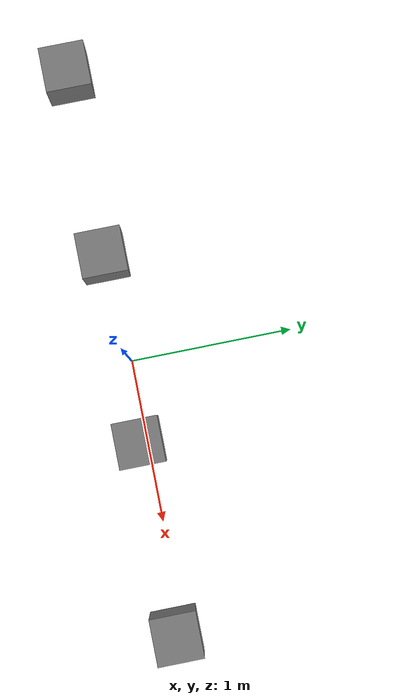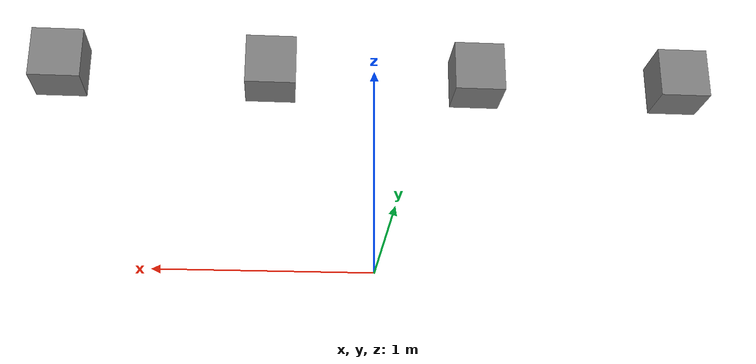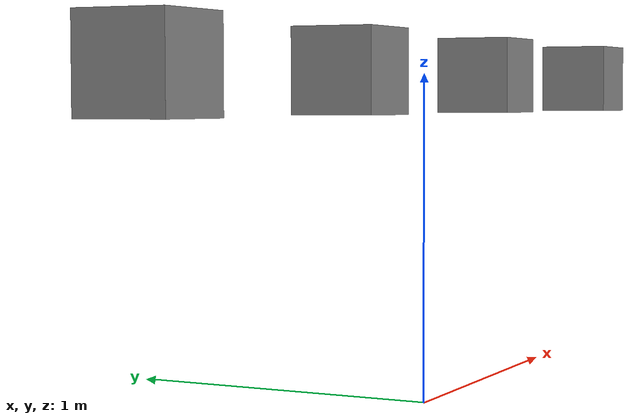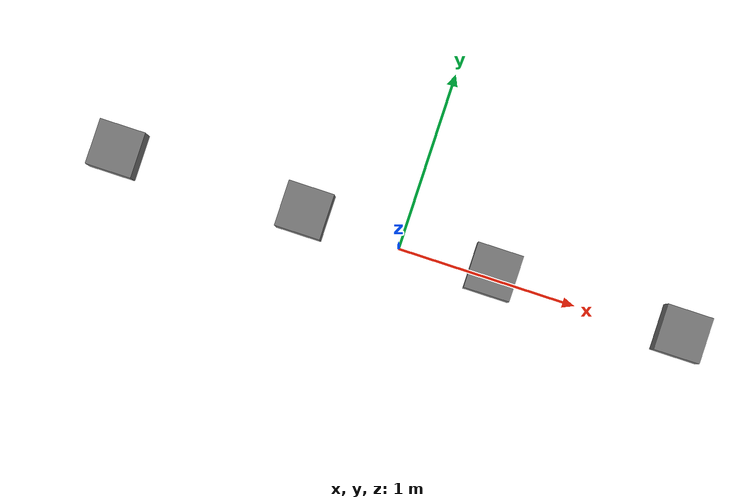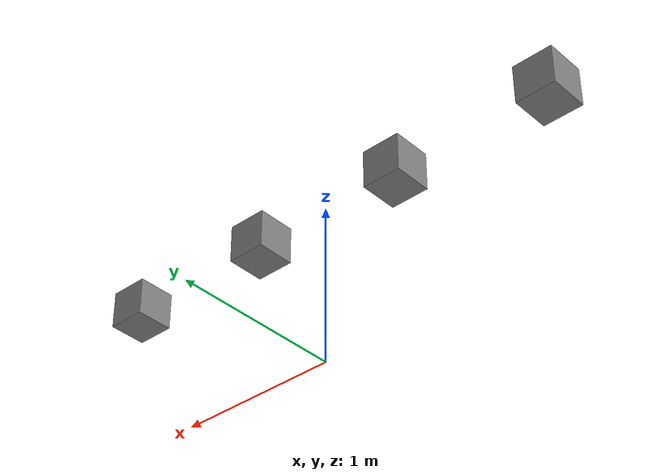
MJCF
<mujoco model="joint_types">
  <compiler angle="radian"/>
  <option gravity="0 0 0"/>
  <worldbody>
    <body name="hinge_body" pos="-1.5 0 1">
      <joint name="hinge" type="hinge" axis="0 1 0"/>
      <geom type="box" size=".12 .12 .12" mass="1"/>
    </body>
    <body name="slide_body" pos="-.5 0 1">
      <joint name="slide" type="slide" axis="0 0 1"/>
      <geom type="box" size=".12 .12 .12" mass="1"/>
    </body>
    <body name="ball_body" pos=".5 0 1">
      <joint name="ball" type="ball"/>
      <geom type="box" size=".12 .12 .12" mass="1"/>
    </body>
    <body name="free_body" pos="1.5 0 1">
      <freejoint name="free"/>
      <geom type="box" size=".12 .12 .12" mass="1"/>
    </body>
  </worldbody>
</mujoco>
